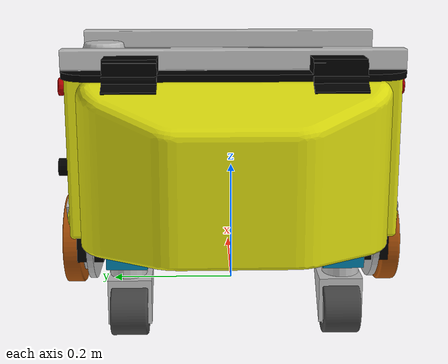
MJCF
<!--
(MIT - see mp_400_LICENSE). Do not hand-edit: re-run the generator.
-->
<mujoco model="mp_400">
  <compiler angle="radian" meshdir="meshes" autolimits="true"/>

  <default>
    <default class="mp_400">
      <default class="visual">
        <geom type="mesh" contype="0" conaffinity="0" group="2"/>
      </default>
      <default class="collision">
        <geom type="mesh" group="3" rgba="0.6 0.1 0.1 0.35"/>
      </default>
      <default class="wheel_collision">
        <!-- Driven tyres: this base moves because these push on the ground. -->
        <geom type="sphere" group="3" rgba="0.05 0.05 0.05 0.4" friction="1.0 0.005 0.0001"/>
      </default>
      <default class="caster_collision">
        <!-- A passive caster swivels; a fixed sphere cannot, so it stands in for one with a low
             friction and `priority` to make that friction actually apply. -->
        <geom type="sphere" group="3" rgba="0.6 0.1 0.1 0.35"
              friction="0.04 0.005 0.0001" priority="2"/>
      </default>
      <default class="wheel">
        <joint axis="-1 0 0" damping="0.5" armature="0.02" limited="false"/>
      </default>
    </default>
  </default>

  <asset>
    <material name="MP-400-BODY__m0_mat" rgba="0.749 0.749 0.749 1"/>
    <material name="MP-400-BODY__m1_mat" rgba="0.4706 0.5882 0.4902 1"/>
    <material name="MP-400-BODY__m2_mat" rgba="0.9961 0.8353 0 1"/>
    <material name="MP-400-BODY__m3_mat" rgba="0 0.6 0.8 1"/>
    <material name="MP-400-BODY__m4_mat" rgba="0 0 0 1"/>
    <material name="MP-400-BODY__m5_mat" rgba="0 0.4902 0.6588 1"/>
    <material name="MP-400-BODY__m6_mat" rgba="0.698 0 0 1"/>
    <material name="MP-400-BODY__m7_mat" rgba="0.9608 0.9608 0.9608 1"/>
    <material name="MP-400-BODY__m8_mat" rgba="0.2706 0.2706 0.2706 1"/>
    <material name="MP-400-BODY__m9_mat" rgba="0.8667 0.8667 0.051 1"/>
    <material name="MP-400-CASTER-WHEEL__m0_mat" rgba="0.749 0.749 0.749 1"/>
    <material name="MP-400-CASTER-WHEEL__m1_mat" rgba="0.2706 0.2706 0.2706 1"/>
    <material name="MP-400-FIXED-WHEEL-LEFT__m0_mat" rgba="0.749 0.749 0.749 1"/>
    <material name="MP-400-FIXED-WHEEL-LEFT__m1_mat" rgba="0.6627 0.3098 0.0353 1"/>
    <material name="MP-400-FIXED-WHEEL-RIGHT__m0_mat" rgba="0.749 0.749 0.749 1"/>
    <material name="MP-400-FIXED-WHEEL-RIGHT__m1_mat" rgba="0.6627 0.3098 0.0353 1"/>
    <mesh file="MP-400-BODY__m0.obj" scale="0.001 0.001 0.001" inertia="shell"/>
    <mesh file="MP-400-BODY__m1.obj" scale="0.001 0.001 0.001" inertia="shell"/>
    <mesh file="MP-400-BODY__m2.obj" scale="0.001 0.001 0.001" inertia="shell"/>
    <mesh file="MP-400-BODY__m3.obj" scale="0.001 0.001 0.001" inertia="shell"/>
    <mesh file="MP-400-BODY__m4.obj" scale="0.001 0.001 0.001" inertia="shell"/>
    <mesh file="MP-400-BODY__m5.obj" scale="0.001 0.001 0.001" inertia="shell"/>
    <mesh file="MP-400-BODY__m6.obj" scale="0.001 0.001 0.001" inertia="shell"/>
    <mesh file="MP-400-BODY__m7.obj" scale="0.001 0.001 0.001" inertia="shell"/>
    <mesh file="MP-400-BODY__m8.obj" scale="0.001 0.001 0.001" inertia="shell"/>
    <mesh file="MP-400-BODY__m9.obj" scale="0.001 0.001 0.001" inertia="shell"/>
    <mesh file="MP-400-CASTER-WHEEL__m0.obj" scale="0.001 0.001 0.001" inertia="shell"/>
    <mesh file="MP-400-CASTER-WHEEL__m1.obj" scale="0.001 0.001 0.001" inertia="shell"/>
    <mesh file="MP-400-FIXED-WHEEL-LEFT__m0.obj" scale="0.001 0.001 0.001" inertia="shell"/>
    <mesh file="MP-400-FIXED-WHEEL-LEFT__m1.obj" scale="0.001 0.001 0.001" inertia="shell"/>
    <mesh file="MP-400-FIXED-WHEEL-RIGHT__m0.obj" scale="0.001 0.001 0.001" inertia="shell"/>
    <mesh file="MP-400-FIXED-WHEEL-RIGHT__m1.obj" scale="0.001 0.001 0.001" inertia="shell"/>
  </asset>

  <contact>
    <exclude body1="base_link" body2="mp_400_fixed_wheel_left_link"/>
    <exclude body1="base_link" body2="mp_400_fixed_wheel_right_link"/>
    <exclude body1="base_link" body2="mp_400_caster_wheel_front_left_link"/>
    <exclude body1="base_link" body2="mp_400_caster_wheel_front_right_link"/>
    <exclude body1="base_link" body2="mp_400_caster_wheel_back_left_link"/>
    <exclude body1="base_link" body2="mp_400_caster_wheel_back_right_link"/>
  </contact>

  <worldbody>
    <body name="base_link" childclass="mp_400">
      <freejoint name="base_free"/>
      <inertial pos="0 0 0" mass="30" diaginertia="1.71402 0.8856 2.5725"/>
      <site name="base_imu" pos="0 0 0" size="0.01" rgba="0 0 0 0"/>
        <geom class="visual" mesh="MP-400-BODY__m0" material="MP-400-BODY__m0_mat" pos="0.0 0.0 0" quat="0.7073883 0 0 0.7068252"/>
        <geom class="visual" mesh="MP-400-BODY__m1" material="MP-400-BODY__m1_mat" pos="0.0 0.0 0" quat="0.7073883 0 0 0.7068252"/>
        <geom class="visual" mesh="MP-400-BODY__m2" material="MP-400-BODY__m2_mat" pos="0.0 0.0 0" quat="0.7073883 0 0 0.7068252"/>
        <geom class="visual" mesh="MP-400-BODY__m3" material="MP-400-BODY__m3_mat" pos="0.0 0.0 0" quat="0.7073883 0 0 0.7068252"/>
        <geom class="visual" mesh="MP-400-BODY__m4" material="MP-400-BODY__m4_mat" pos="0.0 0.0 0" quat="0.7073883 0 0 0.7068252"/>
        <geom class="visual" mesh="MP-400-BODY__m5" material="MP-400-BODY__m5_mat" pos="0.0 0.0 0" quat="0.7073883 0 0 0.7068252"/>
        <geom class="visual" mesh="MP-400-BODY__m6" material="MP-400-BODY__m6_mat" pos="0.0 0.0 0" quat="0.7073883 0 0 0.7068252"/>
        <geom class="visual" mesh="MP-400-BODY__m7" material="MP-400-BODY__m7_mat" pos="0.0 0.0 0" quat="0.7073883 0 0 0.7068252"/>
        <geom class="visual" mesh="MP-400-BODY__m8" material="MP-400-BODY__m8_mat" pos="0.0 0.0 0" quat="0.7073883 0 0 0.7068252"/>
        <geom class="visual" mesh="MP-400-BODY__m9" material="MP-400-BODY__m9_mat" pos="0.0 0.0 0" quat="0.7073883 0 0 0.7068252"/>
        <geom class="collision" mesh="MP-400-BODY__m0" name="base_link_collision" pos="0.0 0.0 0.0" quat="0.7073883 0 0 0.7068252"/>
        <body name="mp_400_caster_wheel_front_left_link" pos="0.165 0.155 0.036" quat="0.7073883 0 0 0.7068252">
          <inertial pos="0 0 0" mass="12.7" diaginertia="0.00499743171 0.00499741733 0.00839239692"/>
          <geom class="visual" mesh="MP-400-CASTER-WHEEL__m0" material="MP-400-CASTER-WHEEL__m0_mat" pos="0 0 0"/>
          <geom class="visual" mesh="MP-400-CASTER-WHEEL__m1" material="MP-400-CASTER-WHEEL__m1_mat" pos="0 0 0"/>
          <geom class="caster_collision" name="mp_400_caster_wheel_front_left_link_tyre" size="0.038" pos="0 0 0"/>
        </body>
        <body name="mp_400_caster_wheel_front_right_link" pos="0.165 -0.155 0.036" quat="0.7073883 0 0 0.7068252">
          <inertial pos="0 0 0" mass="12.7" diaginertia="0.00499743171 0.00499741733 0.00839239692"/>
          <geom class="visual" mesh="MP-400-CASTER-WHEEL__m0" material="MP-400-CASTER-WHEEL__m0_mat" pos="0 0 0"/>
          <geom class="visual" mesh="MP-400-CASTER-WHEEL__m1" material="MP-400-CASTER-WHEEL__m1_mat" pos="0 0 0"/>
          <geom class="caster_collision" name="mp_400_caster_wheel_front_right_link_tyre" size="0.038" pos="0 0 0"/>
        </body>
        <body name="mp_400_caster_wheel_back_left_link" pos="-0.220 0.155 0.036" quat="0.7073883 0 0 0.7068252">
          <inertial pos="0 0 0" mass="12.7" diaginertia="0.00499743171 0.00499741733 0.00839239692"/>
          <geom class="visual" mesh="MP-400-CASTER-WHEEL__m0" material="MP-400-CASTER-WHEEL__m0_mat" pos="0 0 0"/>
          <geom class="visual" mesh="MP-400-CASTER-WHEEL__m1" material="MP-400-CASTER-WHEEL__m1_mat" pos="0 0 0"/>
          <geom class="caster_collision" name="mp_400_caster_wheel_back_left_link_tyre" size="0.038" pos="0 0 0"/>
        </body>
        <body name="mp_400_caster_wheel_back_right_link" pos="-0.220 -0.155 0.036" quat="0.7073883 0 0 0.7068252">
          <inertial pos="0 0 0" mass="12.7" diaginertia="0.00499743171 0.00499741733 0.00839239692"/>
          <geom class="visual" mesh="MP-400-CASTER-WHEEL__m0" material="MP-400-CASTER-WHEEL__m0_mat" pos="0 0 0"/>
          <geom class="visual" mesh="MP-400-CASTER-WHEEL__m1" material="MP-400-CASTER-WHEEL__m1_mat" pos="0 0 0"/>
          <geom class="caster_collision" name="mp_400_caster_wheel_back_right_link_tyre" size="0.038" pos="0 0 0"/>
        </body>
        <body name="mp_400_fixed_wheel_left_link" pos="-0. 0.26 0.074" quat="0.7073883 0 0 0.7068252">
          <inertial pos="0 0 0" mass="1.82362" diaginertia="0.00399743171 0.00399741733 0.00739239692"/>
          <joint name="mp_400_fixed_wheel_left_joint" class="wheel"/>
            <geom class="visual" mesh="MP-400-FIXED-WHEEL-LEFT__m0" material="MP-400-FIXED-WHEEL-LEFT__m0_mat" pos="0 0 0"/>
            <geom class="visual" mesh="MP-400-FIXED-WHEEL-LEFT__m1" material="MP-400-FIXED-WHEEL-LEFT__m1_mat" pos="0 0 0"/>
            <geom class="wheel_collision" name="mp_400_fixed_wheel_left_link_tyre" size="0.0765" pos="0 0 0"/>
        </body>
        <body name="mp_400_fixed_wheel_right_link" pos="0. -0.26 0.074" quat="0.7073883 0 0 0.7068252">
          <inertial pos="0 0 0" mass="1.82362" diaginertia="0.00399743171 0.00399741733 0.00739239692"/>
          <joint name="mp_400_fixed_wheel_right_joint" class="wheel"/>
            <geom class="visual" mesh="MP-400-FIXED-WHEEL-RIGHT__m0" material="MP-400-FIXED-WHEEL-RIGHT__m0_mat" pos="0 0 0" quat="0.0007963267 0 0 0.9999997"/>
            <geom class="visual" mesh="MP-400-FIXED-WHEEL-RIGHT__m1" material="MP-400-FIXED-WHEEL-RIGHT__m1_mat" pos="0 0 0" quat="0.0007963267 0 0 0.9999997"/>
            <geom class="wheel_collision" name="mp_400_fixed_wheel_right_link_tyre" size="0.0765" pos="0 0 0"/>
        </body>
    </body>
  </worldbody>

  <actuator>
    <velocity name="wheel_left_motor" joint="mp_400_fixed_wheel_left_joint" kv="120" ctrlrange="-14 14" forcerange="-60 60"/>
    <velocity name="wheel_right_motor" joint="mp_400_fixed_wheel_right_joint" kv="120" ctrlrange="-14 14" forcerange="-60 60"/>
  </actuator>

  <keyframe>
    <key name="home" qpos="0 0 0.0025 1 0 0 0  0 0"/>
  </keyframe>
</mujoco>
